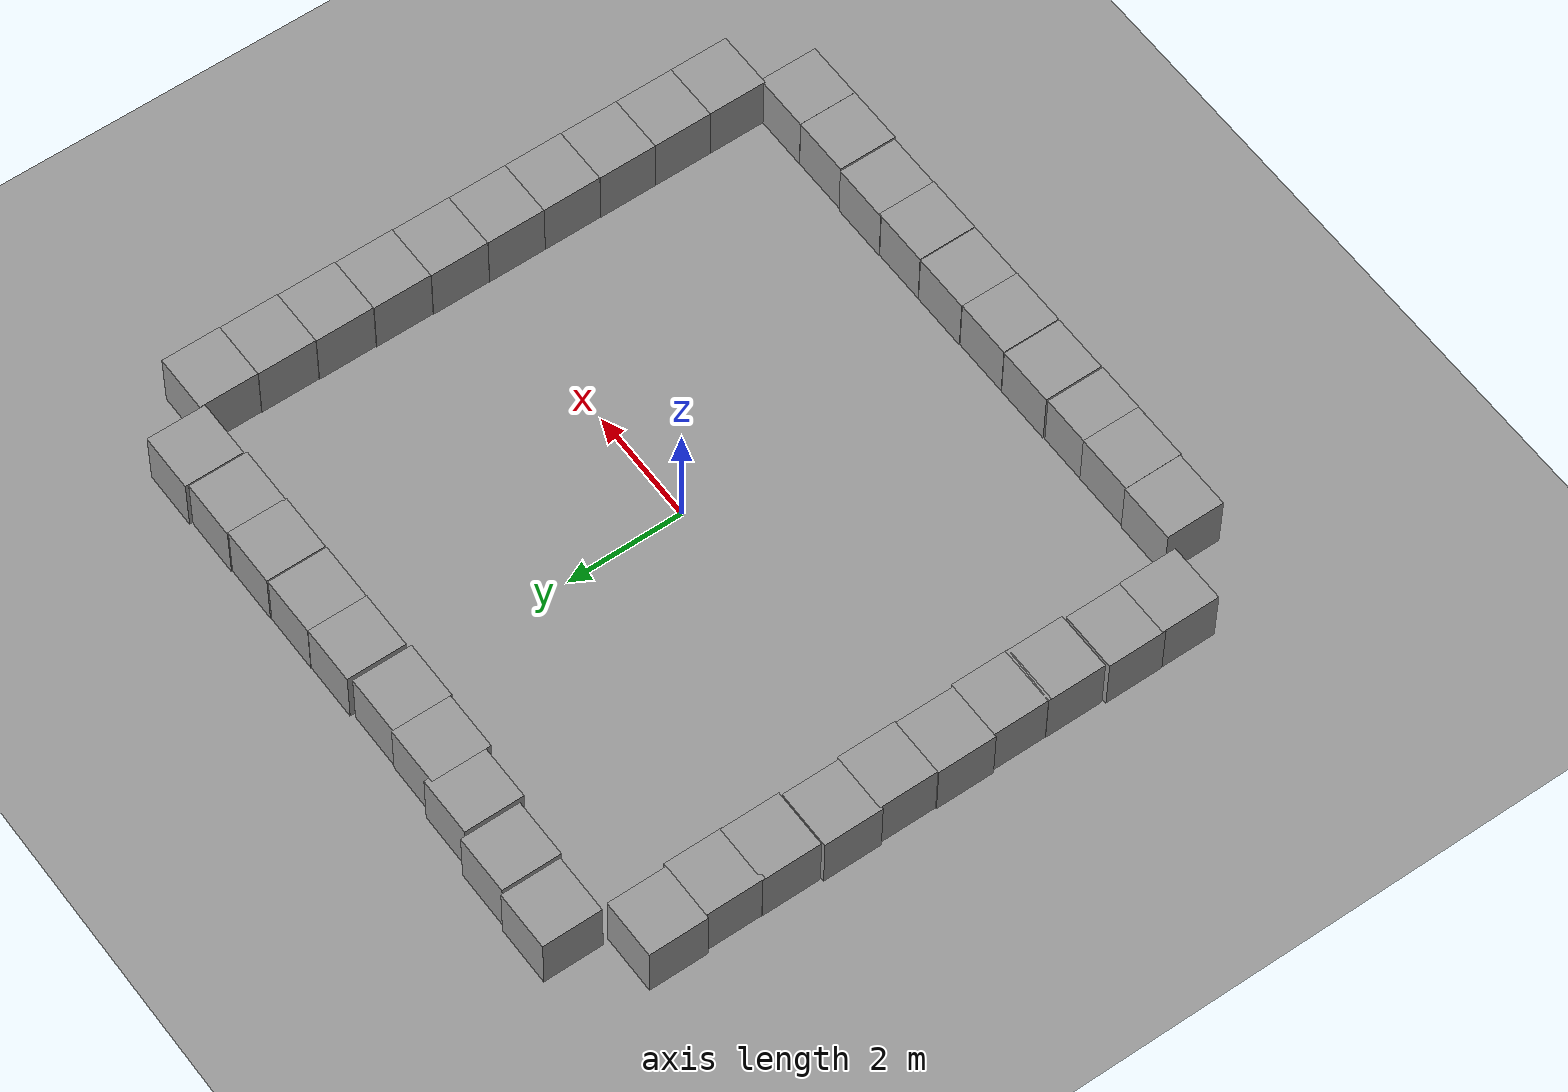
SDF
<sdf version="1.6">
 <world name="default">
  <light name="sun" type="directional">
   <pose>0 0 10 0 -0 0</pose>
   <diffuse>0.8 0.8 0.8 1</diffuse>
   <specular>0.2 0.2 0.2 1</specular>
   <attenuation>
    <range>1000</range>
    <constant>0.9</constant>
    <linear>0.01</linear>
    <quadratic>0.001</quadratic>
   </attenuation>
   <direction>0.5 0.1 -0.9</direction>
  </light>
  <scene><ambient>0.4 0.4 0.4 1</ambient><background>0.7 0.7 0.7 1</background><shadows>1</shadows></scene>
  <physics name="default_physics" default="0" type="ode">
   <max_step_size>0.01</max_step_size>
   <real_time_factor>1</real_time_factor>
   <real_time_update_rate>100</real_time_update_rate>
  </physics>
  <model name="ground_plane_0">
   <static>1</static>
   <link name="link">
    <collision name="collision">
     <geometry><plane><normal>0 0 1</normal><size>100 100</size></plane></geometry>
     <surface><friction><ode><mu>100</mu><mu2>50</mu2></ode></friction></surface>
    </collision>
    <visual name="visual">
     <cast_shadows>0</cast_shadows>
     <geometry><plane><normal>0 0 1</normal><size>100 100</size></plane></geometry>
     <material>
      <script><uri>file://media/materials/scripts/gazebo.material</uri><name>Gazebo/Grey</name></script>
     </material>
    </visual>
    <velocity_decay><linear>0</linear><angular>0</angular></velocity_decay>
   </link>
   <pose>0.497681 0 0 0 -0 0</pose>
  </model>
  <gravity>0 0 -9.8</gravity>
  <magnetic_field>6e-06 2.3e-05 -4.2e-05</magnetic_field>
  <atmosphere type="adiabatic"/>
  <spherical_coordinates>
   <surface_model>EARTH_WGS84</surface_model>
   <latitude_deg>0</latitude_deg>
   <longitude_deg>0</longitude_deg>
   <elevation>0</elevation>
   <heading_deg>0</heading_deg>
  </spherical_coordinates>
  <model name="unit_box_0">
   <pose>5.44852 -4.55826 0.49912 0 -0 0.001661</pose>
   <link name="link">
    <inertial>
     <mass>1</mass>
     <inertia>
      <ixx>0.166667</ixx>
      <ixy>0</ixy>
      <ixz>0</ixz>
      <iyy>0.166667</iyy>
      <iyz>0</iyz>
      <izz>0.166667</izz>
     </inertia>
    </inertial>
    <collision name="collision"><geometry><box><size>1 1 1</size></box></geometry></collision>
    <visual name="visual">
     <geometry><box><size>1 1 1</size></box></geometry>
     <material>
      <script><name>Gazebo/Grey</name><uri>file://media/materials/scripts/gazebo.material</uri></script>
     </material>
    </visual>
   </link>
  </model>
  <model name="unit_box_1">
   <pose>5.44708 -3.55813 0.49907 0 0.0001 0.001726</pose>
   <link name="link">
    <inertial>
     <mass>1</mass>
     <inertia>
      <ixx>0.166667</ixx>
      <ixy>0</ixy>
      <ixz>0</ixz>
      <iyy>0.166667</iyy>
      <iyz>0</iyz>
      <izz>0.166667</izz>
     </inertia>
    </inertial>
    <collision name="collision"><geometry><box><size>1 1 1</size></box></geometry></collision>
    <visual name="visual">
     <geometry><box><size>1 1 1</size></box></geometry>
     <material>
      <script><name>Gazebo/Grey</name><uri>file://media/materials/scripts/gazebo.material</uri></script>
     </material>
    </visual>
   </link>
  </model>
  <model name="unit_box_2">
   <pose>5.44517 -2.55764 0.5 0 -0 0.001078</pose>
   <link name="link">
    <inertial>
     <mass>1</mass>
     <inertia>
      <ixx>0.166667</ixx>
      <ixy>0</ixy>
      <ixz>0</ixz>
      <iyy>0.166667</iyy>
      <iyz>0</iyz>
      <izz>0.166667</izz>
     </inertia>
    </inertial>
    <collision name="collision"><geometry><box><size>1 1 1</size></box></geometry></collision>
    <visual name="visual">
     <geometry><box><size>1 1 1</size></box></geometry>
     <material>
      <script><name>Gazebo/Grey</name><uri>file://media/materials/scripts/gazebo.material</uri></script>
     </material>
    </visual>
   </link>
  </model>
  <model name="unit_box_2_clone">
   <pose>5.45043 -1.55746 0.49902 0 -0 0.001437</pose>
   <link name="link">
    <inertial>
     <mass>1</mass>
     <inertia>
      <ixx>0.166667</ixx>
      <ixy>0</ixy>
      <ixz>0</ixz>
      <iyy>0.166667</iyy>
      <iyz>0</iyz>
      <izz>0.166667</izz>
     </inertia>
    </inertial>
    <collision name="collision"><geometry><box><size>1 1 1</size></box></geometry></collision>
    <visual name="visual">
     <geometry><box><size>1 1 1</size></box></geometry>
     <material>
      <script><name>Gazebo/Grey</name><uri>file://media/materials/scripts/gazebo.material</uri></script>
     </material>
    </visual>
   </link>
  </model>
  <model name="unit_box_2_clone_0">
   <pose>5.44832 -0.55695 0.5 0 -0 0.001064</pose>
   <link name="link">
    <inertial>
     <mass>1</mass>
     <inertia>
      <ixx>0.166667</ixx>
      <ixy>0</ixy>
      <ixz>0</ixz>
      <iyy>0.166667</iyy>
      <iyz>0</iyz>
      <izz>0.166667</izz>
     </inertia>
    </inertial>
    <collision name="collision"><geometry><box><size>1 1 1</size></box></geometry></collision>
    <visual name="visual">
     <geometry><box><size>1 1 1</size></box></geometry>
     <material>
      <script><name>Gazebo/Grey</name><uri>file://media/materials/scripts/gazebo.material</uri></script>
     </material>
    </visual>
   </link>
  </model>
  <model name="unit_box_2_clone_1">
   <pose>5.45197 0.443095 0.500027 5.1e-05 -1e-05 0.001037</pose>
   <link name="link">
    <inertial>
     <mass>1</mass>
     <inertia>
      <ixx>0.166667</ixx>
      <ixy>0</ixy>
      <ixz>0</ixz>
      <iyy>0.166667</iyy>
      <iyz>0</iyz>
      <izz>0.166667</izz>
     </inertia>
    </inertial>
    <collision name="collision"><geometry><box><size>1 1 1</size></box></geometry></collision>
    <visual name="visual">
     <geometry><box><size>1 1 1</size></box></geometry>
     <material>
      <script><name>Gazebo/Grey</name><uri>file://media/materials/scripts/gazebo.material</uri></script>
     </material>
    </visual>
   </link>
  </model>
  <model name="unit_box_2_clone_2">
   <pose>5.46211 1.4431 0.499996 -1.6e-05 -6e-06 0.000967</pose>
   <link name="link">
    <inertial>
     <mass>1</mass>
     <inertia>
      <ixx>0.166667</ixx>
      <ixy>0</ixy>
      <ixz>0</ixz>
      <iyy>0.166667</iyy>
      <iyz>0</iyz>
      <izz>0.166667</izz>
     </inertia>
    </inertial>
    <collision name="collision"><geometry><box><size>1 1 1</size></box></geometry></collision>
    <visual name="visual">
     <geometry><box><size>1 1 1</size></box></geometry>
     <material>
      <script><name>Gazebo/Grey</name><uri>file://media/materials/scripts/gazebo.material</uri></script>
     </material>
    </visual>
   </link>
  </model>
  <model name="unit_box_2_clone_3">
   <pose>5.47337 2.44365 0.499672 -0.000659 -1.7e-05 0.001001</pose>
   <link name="link">
    <inertial>
     <mass>1</mass>
     <inertia>
      <ixx>0.166667</ixx>
      <ixy>0</ixy>
      <ixz>0</ixz>
      <iyy>0.166667</iyy>
      <iyz>0</iyz>
      <izz>0.166667</izz>
     </inertia>
    </inertial>
    <collision name="collision"><geometry><box><size>1 1 1</size></box></geometry></collision>
    <visual name="visual">
     <geometry><box><size>1 1 1</size></box></geometry>
     <material>
      <script><name>Gazebo/Grey</name><uri>file://media/materials/scripts/gazebo.material</uri></script>
     </material>
    </visual>
   </link>
  </model>
  <model name="unit_box_2_clone_4">
   <pose>5.48398 3.44302 0.499702 0.000557 -3e-06 0.001034</pose>
   <link name="link">
    <inertial>
     <mass>1</mass>
     <inertia>
      <ixx>0.166667</ixx>
      <ixy>0</ixy>
      <ixz>0</ixz>
      <iyy>0.166667</iyy>
      <iyz>0</iyz>
      <izz>0.166667</izz>
     </inertia>
    </inertial>
    <collision name="collision"><geometry><box><size>1 1 1</size></box></geometry></collision>
    <visual name="visual">
     <geometry><box><size>1 1 1</size></box></geometry>
     <material>
      <script><name>Gazebo/Grey</name><uri>file://media/materials/scripts/gazebo.material</uri></script>
     </material>
    </visual>
   </link>
  </model>
  <model name="unit_box_2_clone_5">
   <pose>5.49252 4.44332 0.49907 -0 -0.0001 0.001006</pose>
   <link name="link">
    <inertial>
     <mass>1</mass>
     <inertia>
      <ixx>0.166667</ixx>
      <ixy>0</ixy>
      <ixz>0</ixz>
      <iyy>0.166667</iyy>
      <iyz>0</iyz>
      <izz>0.166667</izz>
     </inertia>
    </inertial>
    <collision name="collision"><geometry><box><size>1 1 1</size></box></geometry></collision>
    <visual name="visual">
     <geometry><box><size>1 1 1</size></box></geometry>
     <material>
      <script><name>Gazebo/Grey</name><uri>file://media/materials/scripts/gazebo.material</uri></script>
     </material>
    </visual>
   </link>
  </model>
  <model name="unit_box_2_clone_6">
   <pose>4.49183 5.35246 0.48246 0 -0 0</pose>
   <link name="link">
    <inertial>
     <mass>1</mass>
     <inertia>
      <ixx>0.166667</ixx>
      <ixy>0</ixy>
      <ixz>0</ixz>
      <iyy>0.166667</iyy>
      <iyz>0</iyz>
      <izz>0.166667</izz>
     </inertia>
    </inertial>
    <collision name="collision"><geometry><box><size>1 1 1</size></box></geometry></collision>
    <visual name="visual">
     <geometry><box><size>1 1 1</size></box></geometry>
     <material>
      <script><name>Gazebo/Grey</name><uri>file://media/materials/scripts/gazebo.material</uri></script>
     </material>
    </visual>
   </link>
  </model>
  <model name="unit_box_2_clone_6_clone">
   <pose>3.47151 5.3066 0.48246 0 -0 0</pose>
   <link name="link">
    <inertial>
     <mass>1</mass>
     <inertia>
      <ixx>0.166667</ixx>
      <ixy>0</ixy>
      <ixz>0</ixz>
      <iyy>0.166667</iyy>
      <iyz>0</iyz>
      <izz>0.166667</izz>
     </inertia>
    </inertial>
    <collision name="collision"><geometry><box><size>1 1 1</size></box></geometry></collision>
    <visual name="visual">
     <geometry><box><size>1 1 1</size></box></geometry>
     <material>
      <script><name>Gazebo/Grey</name><uri>file://media/materials/scripts/gazebo.material</uri></script>
     </material>
    </visual>
   </link>
  </model>
  <model name="unit_box_2_clone_6_clone_0">
   <pose>2.49173 5.28842 0.48246 0 -0 0</pose>
   <link name="link">
    <inertial>
     <mass>1</mass>
     <inertia>
      <ixx>0.166667</ixx>
      <ixy>0</ixy>
      <ixz>0</ixz>
      <iyy>0.166667</iyy>
      <iyz>0</iyz>
      <izz>0.166667</izz>
     </inertia>
    </inertial>
    <collision name="collision"><geometry><box><size>1 1 1</size></box></geometry></collision>
    <visual name="visual">
     <geometry><box><size>1 1 1</size></box></geometry>
     <material>
      <script><name>Gazebo/Grey</name><uri>file://media/materials/scripts/gazebo.material</uri></script>
     </material>
    </visual>
   </link>
  </model>
  <model name="unit_box_2_clone_6_clone_1">
   <pose>1.47044 5.28048 0.48246 0 -0 0</pose>
   <link name="link">
    <inertial>
     <mass>1</mass>
     <inertia>
      <ixx>0.166667</ixx>
      <ixy>0</ixy>
      <ixz>0</ixz>
      <iyy>0.166667</iyy>
      <iyz>0</iyz>
      <izz>0.166667</izz>
     </inertia>
    </inertial>
    <collision name="collision"><geometry><box><size>1 1 1</size></box></geometry></collision>
    <visual name="visual">
     <geometry><box><size>1 1 1</size></box></geometry>
     <material>
      <script><name>Gazebo/Grey</name><uri>file://media/materials/scripts/gazebo.material</uri></script>
     </material>
    </visual>
   </link>
  </model>
  <model name="unit_box_2_clone_6_clone_2">
   <pose>0.48462 5.2747 0.48246 0 -0 0</pose>
   <link name="link">
    <inertial>
     <mass>1</mass>
     <inertia>
      <ixx>0.166667</ixx>
      <ixy>0</ixy>
      <ixz>0</ixz>
      <iyy>0.166667</iyy>
      <iyz>0</iyz>
      <izz>0.166667</izz>
     </inertia>
    </inertial>
    <collision name="collision"><geometry><box><size>1 1 1</size></box></geometry></collision>
    <visual name="visual">
     <geometry><box><size>1 1 1</size></box></geometry>
     <material>
      <script><name>Gazebo/Grey</name><uri>file://media/materials/scripts/gazebo.material</uri></script>
     </material>
    </visual>
   </link>
  </model>
  <model name="unit_box_2_clone_6_clone_3">
   <pose>-0.573584 5.22252 0.48246 0 -0 0</pose>
   <link name="link">
    <inertial>
     <mass>1</mass>
     <inertia>
      <ixx>0.166667</ixx>
      <ixy>0</ixy>
      <ixz>0</ixz>
      <iyy>0.166667</iyy>
      <iyz>0</iyz>
      <izz>0.166667</izz>
     </inertia>
    </inertial>
    <collision name="collision"><geometry><box><size>1 1 1</size></box></geometry></collision>
    <visual name="visual">
     <geometry><box><size>1 1 1</size></box></geometry>
     <material>
      <script><name>Gazebo/Grey</name><uri>file://media/materials/scripts/gazebo.material</uri></script>
     </material>
    </visual>
   </link>
  </model>
  <model name="unit_box_2_clone_6_clone_4">
   <pose>-1.57073 5.24458 0.48246 0 -0 0</pose>
   <link name="link">
    <inertial>
     <mass>1</mass>
     <inertia>
      <ixx>0.166667</ixx>
      <ixy>0</ixy>
      <ixz>0</ixz>
      <iyy>0.166667</iyy>
      <iyz>0</iyz>
      <izz>0.166667</izz>
     </inertia>
    </inertial>
    <collision name="collision"><geometry><box><size>1 1 1</size></box></geometry></collision>
    <visual name="visual">
     <geometry><box><size>1 1 1</size></box></geometry>
     <material>
      <script><name>Gazebo/Grey</name><uri>file://media/materials/scripts/gazebo.material</uri></script>
     </material>
    </visual>
   </link>
  </model>
  <model name="unit_box_2_clone_6_clone_5">
   <pose>-2.49769 5.33227 0.48246 0 -0 0</pose>
   <link name="link">
    <inertial>
     <mass>1</mass>
     <inertia>
      <ixx>0.166667</ixx>
      <ixy>0</ixy>
      <ixz>0</ixz>
      <iyy>0.166667</iyy>
      <iyz>0</iyz>
      <izz>0.166667</izz>
     </inertia>
    </inertial>
    <collision name="collision"><geometry><box><size>1 1 1</size></box></geometry></collision>
    <visual name="visual">
     <geometry><box><size>1 1 1</size></box></geometry>
     <material>
      <script><name>Gazebo/Grey</name><uri>file://media/materials/scripts/gazebo.material</uri></script>
     </material>
    </visual>
   </link>
  </model>
  <model name="unit_box_2_clone_6_clone_6">
   <pose>4.52897 -5.53465 0.48246 0 -0 0</pose>
   <link name="link">
    <inertial>
     <mass>1</mass>
     <inertia>
      <ixx>0.166667</ixx>
      <ixy>0</ixy>
      <ixz>0</ixz>
      <iyy>0.166667</iyy>
      <iyz>0</iyz>
      <izz>0.166667</izz>
     </inertia>
    </inertial>
    <collision name="collision"><geometry><box><size>1 1 1</size></box></geometry></collision>
    <visual name="visual">
     <geometry><box><size>1 1 1</size></box></geometry>
     <material>
      <script><name>Gazebo/Grey</name><uri>file://media/materials/scripts/gazebo.material</uri></script>
     </material>
    </visual>
   </link>
  </model>
  <model name="unit_box_2_clone_6_clone_7">
   <pose>3.5277 -5.53668 0.48246 0 -0 0</pose>
   <link name="link">
    <inertial>
     <mass>1</mass>
     <inertia>
      <ixx>0.166667</ixx>
      <ixy>0</ixy>
      <ixz>0</ixz>
      <iyy>0.166667</iyy>
      <iyz>0</iyz>
      <izz>0.166667</izz>
     </inertia>
    </inertial>
    <collision name="collision"><geometry><box><size>1 1 1</size></box></geometry></collision>
    <visual name="visual">
     <geometry><box><size>1 1 1</size></box></geometry>
     <material>
      <script><name>Gazebo/Grey</name><uri>file://media/materials/scripts/gazebo.material</uri></script>
     </material>
    </visual>
   </link>
  </model>
  <model name="unit_box_2_clone_6_clone_8">
   <pose>2.50168 -5.50969 0.48246 0 -0 0</pose>
   <link name="link">
    <inertial>
     <mass>1</mass>
     <inertia>
      <ixx>0.166667</ixx>
      <ixy>0</ixy>
      <ixz>0</ixz>
      <iyy>0.166667</iyy>
      <iyz>0</iyz>
      <izz>0.166667</izz>
     </inertia>
    </inertial>
    <collision name="collision"><geometry><box><size>1 1 1</size></box></geometry></collision>
    <visual name="visual">
     <geometry><box><size>1 1 1</size></box></geometry>
     <material>
      <script><name>Gazebo/Grey</name><uri>file://media/materials/scripts/gazebo.material</uri></script>
     </material>
    </visual>
   </link>
  </model>
  <model name="unit_box_2_clone_6_clone_9">
   <pose>1.55138 -5.51898 0.48246 0 -0 0</pose>
   <link name="link">
    <inertial>
     <mass>1</mass>
     <inertia>
      <ixx>0.166667</ixx>
      <ixy>0</ixy>
      <ixz>0</ixz>
      <iyy>0.166667</iyy>
      <iyz>0</iyz>
      <izz>0.166667</izz>
     </inertia>
    </inertial>
    <collision name="collision"><geometry><box><size>1 1 1</size></box></geometry></collision>
    <visual name="visual">
     <geometry><box><size>1 1 1</size></box></geometry>
     <material>
      <script><name>Gazebo/Grey</name><uri>file://media/materials/scripts/gazebo.material</uri></script>
     </material>
    </visual>
   </link>
  </model>
  <model name="unit_box_2_clone_6_clone_10">
   <pose>0.537906 -5.5166 0.48246 0 -0 0</pose>
   <link name="link">
    <inertial>
     <mass>1</mass>
     <inertia>
      <ixx>0.166667</ixx>
      <ixy>0</ixy>
      <ixz>0</ixz>
      <iyy>0.166667</iyy>
      <iyz>0</iyz>
      <izz>0.166667</izz>
     </inertia>
    </inertial>
    <collision name="collision"><geometry><box><size>1 1 1</size></box></geometry></collision>
    <visual name="visual">
     <geometry><box><size>1 1 1</size></box></geometry>
     <material>
      <script><name>Gazebo/Grey</name><uri>file://media/materials/scripts/gazebo.material</uri></script>
     </material>
    </visual>
   </link>
  </model>
  <model name="unit_box_2_clone_6_clone_11">
   <pose>-0.462538 -5.52645 0.48246 0 -0 0</pose>
   <link name="link">
    <inertial>
     <mass>1</mass>
     <inertia>
      <ixx>0.166667</ixx>
      <ixy>0</ixy>
      <ixz>0</ixz>
      <iyy>0.166667</iyy>
      <iyz>0</iyz>
      <izz>0.166667</izz>
     </inertia>
    </inertial>
    <collision name="collision"><geometry><box><size>1 1 1</size></box></geometry></collision>
    <visual name="visual">
     <geometry><box><size>1 1 1</size></box></geometry>
     <material>
      <script><name>Gazebo/Grey</name><uri>file://media/materials/scripts/gazebo.material</uri></script>
     </material>
    </visual>
   </link>
  </model>
  <model name="unit_box_2_clone_6_clone_12">
   <pose>-1.4761 -5.52398 0.48246 0 -0 0</pose>
   <link name="link">
    <inertial>
     <mass>1</mass>
     <inertia>
      <ixx>0.166667</ixx>
      <ixy>0</ixy>
      <ixz>0</ixz>
      <iyy>0.166667</iyy>
      <iyz>0</iyz>
      <izz>0.166667</izz>
     </inertia>
    </inertial>
    <collision name="collision"><geometry><box><size>1 1 1</size></box></geometry></collision>
    <visual name="visual">
     <geometry><box><size>1 1 1</size></box></geometry>
     <material>
      <script><name>Gazebo/Grey</name><uri>file://media/materials/scripts/gazebo.material</uri></script>
     </material>
    </visual>
   </link>
  </model>
  <model name="unit_box_2_clone_6_clone_13">
   <pose>-2.50165 -5.53399 0.48246 0 -0 0</pose>
   <link name="link">
    <inertial>
     <mass>1</mass>
     <inertia>
      <ixx>0.166667</ixx>
      <ixy>0</ixy>
      <ixz>0</ixz>
      <iyy>0.166667</iyy>
      <iyz>0</iyz>
      <izz>0.166667</izz>
     </inertia>
    </inertial>
    <collision name="collision"><geometry><box><size>1 1 1</size></box></geometry></collision>
    <visual name="visual">
     <geometry><box><size>1 1 1</size></box></geometry>
     <material>
      <script><name>Gazebo/Grey</name><uri>file://media/materials/scripts/gazebo.material</uri></script>
     </material>
    </visual>
   </link>
  </model>
  <model name="unit_box_2_clone_6_clone_14">
   <pose>-3.34033 -5.52983 0.48246 0 -0 0</pose>
   <link name="link">
    <inertial>
     <mass>1</mass>
     <inertia>
      <ixx>0.166667</ixx>
      <ixy>0</ixy>
      <ixz>0</ixz>
      <iyy>0.166667</iyy>
      <iyz>0</iyz>
      <izz>0.166667</izz>
     </inertia>
    </inertial>
    <collision name="collision"><geometry><box><size>1 1 1</size></box></geometry></collision>
    <visual name="visual">
     <geometry><box><size>1 1 1</size></box></geometry>
     <material>
      <script><name>Gazebo/Grey</name><uri>file://media/materials/scripts/gazebo.material</uri></script>
     </material>
    </visual>
   </link>
  </model>
  <model name="unit_box_2_clone_6_clone_15">
   <pose>-4.34243 -5.50984 0.48246 0 -0 0</pose>
   <link name="link">
    <inertial>
     <mass>1</mass>
     <inertia>
      <ixx>0.166667</ixx>
      <ixy>0</ixy>
      <ixz>0</ixz>
      <iyy>0.166667</iyy>
      <iyz>0</iyz>
      <izz>0.166667</izz>
     </inertia>
    </inertial>
    <collision name="collision"><geometry><box><size>1 1 1</size></box></geometry></collision>
    <visual name="visual">
     <geometry><box><size>1 1 1</size></box></geometry>
     <material>
      <script><name>Gazebo/Grey</name><uri>file://media/materials/scripts/gazebo.material</uri></script>
     </material>
    </visual>
   </link>
  </model>
  <model name="unit_box_2_clone_6_clone_16">
   <pose>-5.54695 -4.48079 0.48246 0 -0 0</pose>
   <link name="link">
    <inertial>
     <mass>1</mass>
     <inertia>
      <ixx>0.166667</ixx>
      <ixy>0</ixy>
      <ixz>0</ixz>
      <iyy>0.166667</iyy>
      <iyz>0</iyz>
      <izz>0.166667</izz>
     </inertia>
    </inertial>
    <collision name="collision"><geometry><box><size>1 1 1</size></box></geometry></collision>
    <visual name="visual">
     <geometry><box><size>1 1 1</size></box></geometry>
     <material>
      <script><name>Gazebo/Grey</name><uri>file://media/materials/scripts/gazebo.material</uri></script>
     </material>
    </visual>
   </link>
  </model>
  <model name="unit_box_2_clone_6_clone_17">
   <pose>-5.55622 -3.52899 0.48246 0 -0 0</pose>
   <link name="link">
    <inertial>
     <mass>1</mass>
     <inertia>
      <ixx>0.166667</ixx>
      <ixy>0</ixy>
      <ixz>0</ixz>
      <iyy>0.166667</iyy>
      <iyz>0</iyz>
      <izz>0.166667</izz>
     </inertia>
    </inertial>
    <collision name="collision"><geometry><box><size>1 1 1</size></box></geometry></collision>
    <visual name="visual">
     <geometry><box><size>1 1 1</size></box></geometry>
     <material>
      <script><name>Gazebo/Grey</name><uri>file://media/materials/scripts/gazebo.material</uri></script>
     </material>
    </visual>
   </link>
  </model>
  <model name="unit_box_2_clone_6_clone_18">
   <pose>-5.51022 -2.49274 0.48246 0 -0 0</pose>
   <link name="link">
    <inertial>
     <mass>1</mass>
     <inertia>
      <ixx>0.166667</ixx>
      <ixy>0</ixy>
      <ixz>0</ixz>
      <iyy>0.166667</iyy>
      <iyz>0</iyz>
      <izz>0.166667</izz>
     </inertia>
    </inertial>
    <collision name="collision"><geometry><box><size>1 1 1</size></box></geometry></collision>
    <visual name="visual">
     <geometry><box><size>1 1 1</size></box></geometry>
     <material>
      <script><name>Gazebo/Grey</name><uri>file://media/materials/scripts/gazebo.material</uri></script>
     </material>
    </visual>
   </link>
  </model>
  <model name="unit_box_2_clone_6_clone_19">
   <pose>-5.5035 -1.54843 0.48246 0 -0 0</pose>
   <link name="link">
    <inertial>
     <mass>1</mass>
     <inertia>
      <ixx>0.166667</ixx>
      <ixy>0</ixy>
      <ixz>0</ixz>
      <iyy>0.166667</iyy>
      <iyz>0</iyz>
      <izz>0.166667</izz>
     </inertia>
    </inertial>
    <collision name="collision"><geometry><box><size>1 1 1</size></box></geometry></collision>
    <visual name="visual">
     <geometry><box><size>1 1 1</size></box></geometry>
     <material>
      <script><name>Gazebo/Grey</name><uri>file://media/materials/scripts/gazebo.material</uri></script>
     </material>
    </visual>
   </link>
  </model>
  <model name="unit_box_2_clone_6_clone_20">
   <pose>-5.54289 -0.549542 0.48246 0 -0 0</pose>
   <link name="link">
    <inertial>
     <mass>1</mass>
     <inertia>
      <ixx>0.166667</ixx>
      <ixy>0</ixy>
      <ixz>0</ixz>
      <iyy>0.166667</iyy>
      <iyz>0</iyz>
      <izz>0.166667</izz>
     </inertia>
    </inertial>
    <collision name="collision"><geometry><box><size>1 1 1</size></box></geometry></collision>
    <visual name="visual">
     <geometry><box><size>1 1 1</size></box></geometry>
     <material>
      <script><name>Gazebo/Grey</name><uri>file://media/materials/scripts/gazebo.material</uri></script>
     </material>
    </visual>
   </link>
  </model>
  <model name="unit_box_2_clone_6_clone_21">
   <pose>-5.52263 0.44624 0.48246 0 -0 0</pose>
   <link name="link">
    <inertial>
     <mass>1</mass>
     <inertia>
      <ixx>0.166667</ixx>
      <ixy>0</ixy>
      <ixz>0</ixz>
      <iyy>0.166667</iyy>
      <iyz>0</iyz>
      <izz>0.166667</izz>
     </inertia>
    </inertial>
    <collision name="collision"><geometry><box><size>1 1 1</size></box></geometry></collision>
    <visual name="visual">
     <geometry><box><size>1 1 1</size></box></geometry>
     <material>
      <script><name>Gazebo/Grey</name><uri>file://media/materials/scripts/gazebo.material</uri></script>
     </material>
    </visual>
   </link>
  </model>
  <model name="unit_box_2_clone_6_clone_22">
   <pose>-5.56067 1.42207 0.48246 0 -0 0</pose>
   <link name="link">
    <inertial>
     <mass>1</mass>
     <inertia>
      <ixx>0.166667</ixx>
      <ixy>0</ixy>
      <ixz>0</ixz>
      <iyy>0.166667</iyy>
      <iyz>0</iyz>
      <izz>0.166667</izz>
     </inertia>
    </inertial>
    <collision name="collision"><geometry><box><size>1 1 1</size></box></geometry></collision>
    <visual name="visual">
     <geometry><box><size>1 1 1</size></box></geometry>
     <material>
      <script><name>Gazebo/Grey</name><uri>file://media/materials/scripts/gazebo.material</uri></script>
     </material>
    </visual>
   </link>
  </model>
  <model name="unit_box_2_clone_6_clone_23">
   <pose>-5.51037 2.44059 0.48246 0 -0 0</pose>
   <link name="link">
    <inertial>
     <mass>1</mass>
     <inertia>
      <ixx>0.166667</ixx>
      <ixy>0</ixy>
      <ixz>0</ixz>
      <iyy>0.166667</iyy>
      <iyz>0</iyz>
      <izz>0.166667</izz>
     </inertia>
    </inertial>
    <collision name="collision"><geometry><box><size>1 1 1</size></box></geometry></collision>
    <visual name="visual">
     <geometry><box><size>1 1 1</size></box></geometry>
     <material>
      <script><name>Gazebo/Grey</name><uri>file://media/materials/scripts/gazebo.material</uri></script>
     </material>
    </visual>
   </link>
  </model>
  <model name="unit_box_2_clone_6_clone_24">
   <pose>-5.50167 3.39188 0.48246 0 -0 0</pose>
   <link name="link">
    <inertial>
     <mass>1</mass>
     <inertia>
      <ixx>0.166667</ixx>
      <ixy>0</ixy>
      <ixz>0</ixz>
      <iyy>0.166667</iyy>
      <iyz>0</iyz>
      <izz>0.166667</izz>
     </inertia>
    </inertial>
    <collision name="collision"><geometry><box><size>1 1 1</size></box></geometry></collision>
    <visual name="visual">
     <geometry><box><size>1 1 1</size></box></geometry>
     <material>
      <script><name>Gazebo/Grey</name><uri>file://media/materials/scripts/gazebo.material</uri></script>
     </material>
    </visual>
   </link>
  </model>
  <model name="unit_box_2_clone_6_clone_25">
   <pose>-5.55473 4.38413 0.48246 0 -0 0</pose>
   <link name="link">
    <inertial>
     <mass>1</mass>
     <inertia>
      <ixx>0.166667</ixx>
      <ixy>0</ixy>
      <ixz>0</ixz>
      <iyy>0.166667</iyy>
      <iyz>0</iyz>
      <izz>0.166667</izz>
     </inertia>
    </inertial>
    <collision name="collision"><geometry><box><size>1 1 1</size></box></geometry></collision>
    <visual name="visual">
     <geometry><box><size>1 1 1</size></box></geometry>
     <material>
      <script><name>Gazebo/Grey</name><uri>file://media/materials/scripts/gazebo.material</uri></script>
     </material>
    </visual>
   </link>
  </model>
  <model name="unit_box_2_clone_6_clone_26">
   <pose>-4.60027 5.49308 0.48246 0 -0 0</pose>
   <link name="link">
    <inertial>
     <mass>1</mass>
     <inertia>
      <ixx>0.166667</ixx>
      <ixy>0</ixy>
      <ixz>0</ixz>
      <iyy>0.166667</iyy>
      <iyz>0</iyz>
      <izz>0.166667</izz>
     </inertia>
    </inertial>
    <collision name="collision"><geometry><box><size>1 1 1</size></box></geometry></collision>
    <visual name="visual">
     <geometry><box><size>1 1 1</size></box></geometry>
     <material>
      <script><name>Gazebo/Grey</name><uri>file://media/materials/scripts/gazebo.material</uri></script>
     </material>
    </visual>
   </link>
  </model>
  <model name="unit_box_2_clone_6_clone_27">
   <pose>-3.55371 5.44212 0.48246 0 -0 0</pose>
   <link name="link">
    <inertial>
     <mass>1</mass>
     <inertia>
      <ixx>0.166667</ixx>
      <ixy>0</ixy>
      <ixz>0</ixz>
      <iyy>0.166667</iyy>
      <iyz>0</iyz>
      <izz>0.166667</izz>
     </inertia>
    </inertial>
    <collision name="collision"><geometry><box><size>1 1 1</size></box></geometry></collision>
    <visual name="visual">
     <geometry><box><size>1 1 1</size></box></geometry>
     <material>
      <script><name>Gazebo/Grey</name><uri>file://media/materials/scripts/gazebo.material</uri></script>
     </material>
    </visual>
   </link>
  </model>
 </world>
</sdf>
